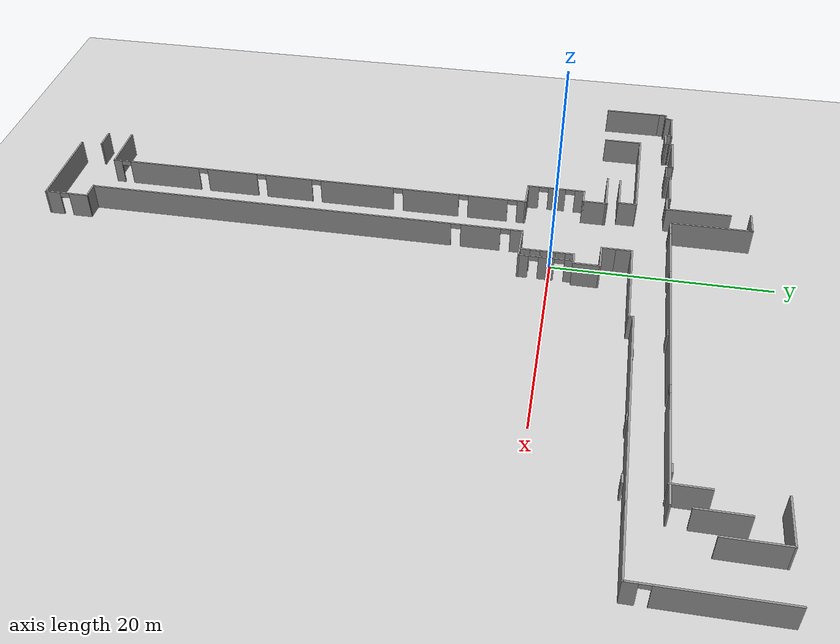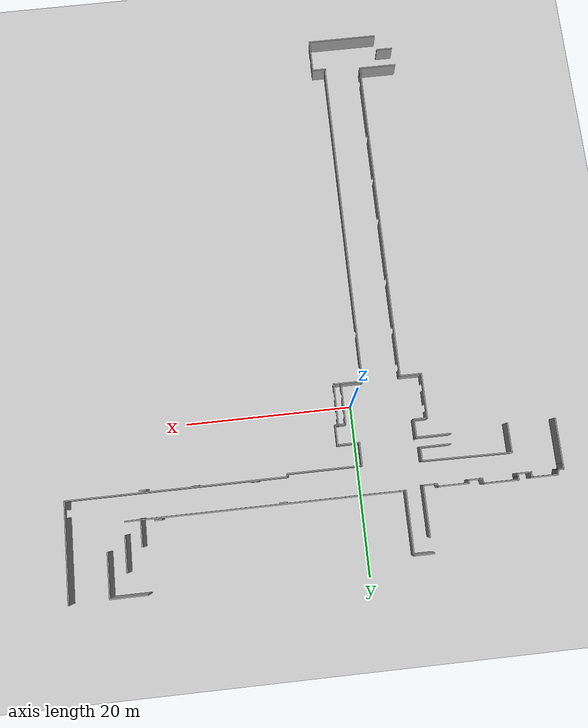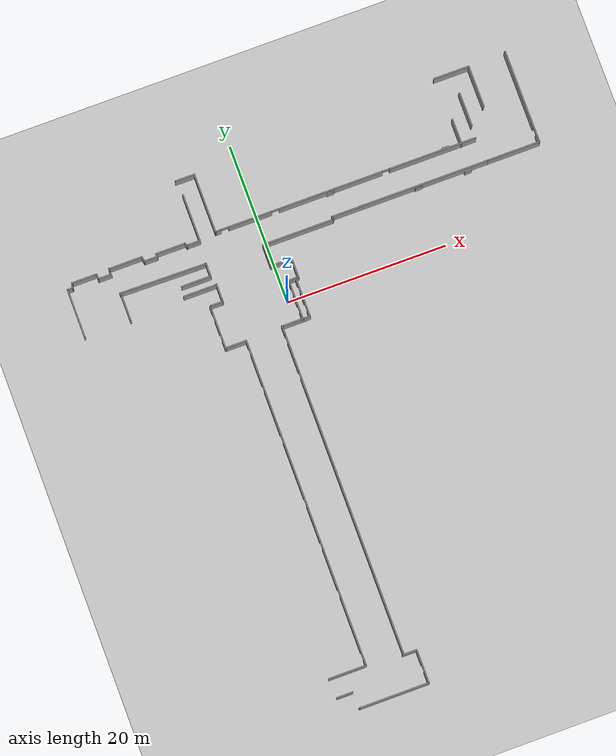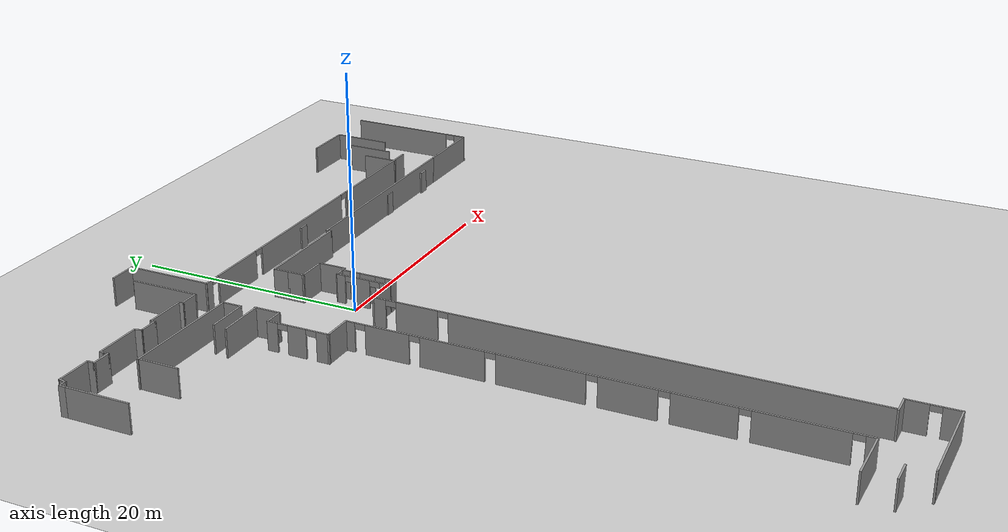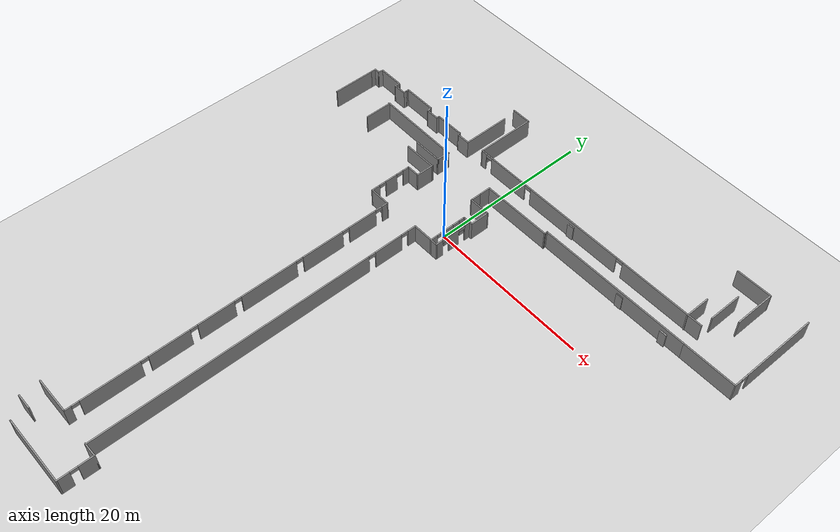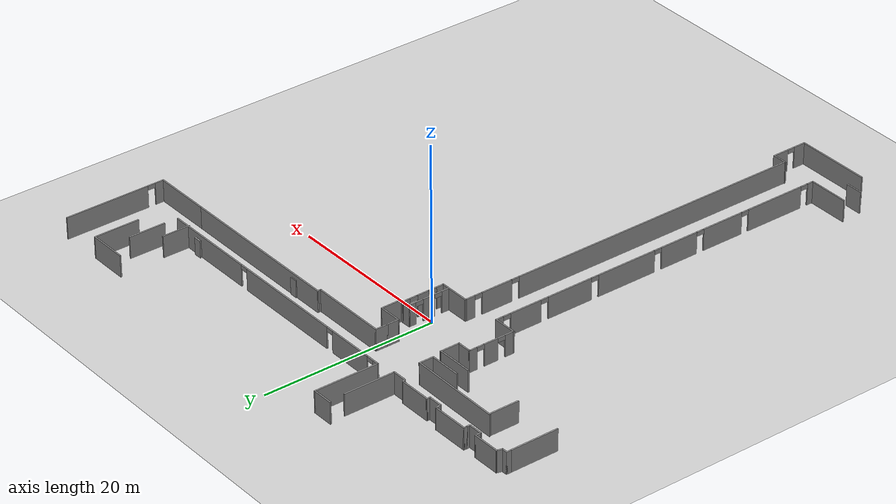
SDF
<sdf version="1.6">
 <world name="default">
  <model name="ground_plane">
   <static>1</static>
   <link name="link">
    <collision name="collision">
     <geometry><plane><normal>0 0 1</normal><size>100 100</size></plane></geometry>
     <surface><friction><ode><mu>100</mu><mu2>50</mu2></ode></friction></surface>
    </collision>
    <visual name="visual">
     <cast_shadows>0</cast_shadows>
     <geometry><plane><normal>0 0 1</normal><size>100 100</size></plane></geometry>
     <material>
      <script><uri>file://media/materials/scripts/gazebo.material</uri><name>Gazebo/Grey</name></script>
     </material>
    </visual>
   </link>
  </model>
  <model name="Untitled">
   <pose>5.24668 -14.5439 0 0 -0 0</pose>
   <link name="Door_21">
    <collision name="Door_21_Collision">
     <geometry><box><size>0.9 0.17 2</size></box></geometry>
     <pose>0 0 1 0 -0 0</pose>
    </collision>
    <visual name="Door_21_Visual">
     <pose>0 0 1 0 -0 0</pose>
     <geometry><box><size>0.9 0.17 2</size></box></geometry>
     <material>
      <script><uri>file://media/materials/scripts/gazebo.material</uri><name>Gazebo/Grey</name></script>
     </material>
    </visual>
    <pose>6.93392 22.1522 0 0 -0 0</pose>
   </link>
   <link name="Door_22">
    <collision name="Door_22_Collision">
     <geometry><box><size>0.9 0.17 2</size></box></geometry>
     <pose>0 0 1 0 -0 0</pose>
    </collision>
    <visual name="Door_22_Visual">
     <pose>0 0 1 0 -0 0</pose>
     <geometry><box><size>0.9 0.17 2</size></box></geometry>
     <material>
      <script><uri>file://media/materials/scripts/gazebo.material</uri><name>Gazebo/Grey</name></script>
     </material>
    </visual>
    <pose>14.0126 21.9752 0 0 -0 0</pose>
   </link>
   <link name="Door_23">
    <collision name="Door_23_Collision">
     <geometry><box><size>0.9 0.17 2</size></box></geometry>
     <pose>0 0 1 0 -0 0</pose>
    </collision>
    <visual name="Door_23_Visual">
     <pose>0 0 1 0 -0 0</pose>
     <geometry><box><size>0.9 0.17 2</size></box></geometry>
     <material>
      <script><uri>file://media/materials/scripts/gazebo.material</uri><name>Gazebo/Grey</name></script>
     </material>
    </visual>
    <pose>20.2065 21.7983 0 0 -0 0</pose>
   </link>
   <link name="Door_25">
    <collision name="Door_25_Collision">
     <geometry><box><size>0.9 0.17 2</size></box></geometry>
     <pose>0 0 1 0 -0 0</pose>
    </collision>
    <visual name="Door_25_Visual">
     <pose>0 0 1 0 -0 0</pose>
     <geometry><box><size>0.9 0.17 2</size></box></geometry>
     <material>
      <script><uri>file://media/materials/scripts/gazebo.material</uri><name>Gazebo/Grey</name></script>
     </material>
    </visual>
    <pose>3.92546 24.9837 0 0 -0 0</pose>
   </link>
   <link name="Door_27">
    <collision name="Door_27_Collision">
     <geometry><box><size>0.9 0.17 2</size></box></geometry>
     <pose>0 0 1 0 -0 0</pose>
    </collision>
    <visual name="Door_27_Visual">
     <pose>0 0 1 0 -0 0</pose>
     <geometry><box><size>0.9 0.17 2</size></box></geometry>
     <material>
      <script><uri>file://media/materials/scripts/gazebo.material</uri><name>Gazebo/Grey</name></script>
     </material>
    </visual>
    <pose>18.6138 25.3376 0 0 -0 0</pose>
   </link>
   <link name="Wall_10">
    <pose>-3.49868 14.2381 0 0 -0 1.5708</pose>
    <visual name="Wall_10_Visual_0">
     <pose>-2.03539 0 1.25 0 -0 0</pose>
     <geometry><box><size>0.929216 0.15 2.5</size></box></geometry>
     <material>
      <script><uri>file://media/materials/scripts/gazebo.material</uri><name>Gazebo/Grey</name></script>
      <ambient>1 1 1 1</ambient>
     </material>
    </visual>
    <collision name="Wall_10_Collision_0">
     <geometry><box><size>0.929216 0.15 2.5</size></box></geometry>
     <pose>-2.03539 0 1.25 0 -0 0</pose>
    </collision>
    <visual name="Wall_10_Visual_1">
     <pose>0.040984 0 1.25 0 -0 0</pose>
     <geometry><box><size>1.42354 0.15 2.5</size></box></geometry>
     <material>
      <script><uri>file://media/materials/scripts/gazebo.material</uri><name>Gazebo/Grey</name></script>
      <ambient>1 1 1 1</ambient>
     </material>
    </visual>
    <collision name="Wall_10_Collision_1">
     <geometry><box><size>1.42354 0.15 2.5</size></box></geometry>
     <pose>0.040984 0 1.25 0 -0 0</pose>
    </collision>
    <visual name="Wall_10_Visual_2">
     <pose>2.07638 0 1.25 0 -0 0</pose>
     <geometry><box><size>0.847248 0.15 2.5</size></box></geometry>
     <material>
      <script><uri>file://media/materials/scripts/gazebo.material</uri><name>Gazebo/Grey</name></script>
      <ambient>1 1 1 1</ambient>
     </material>
    </visual>
    <collision name="Wall_10_Collision_2">
     <geometry><box><size>0.847248 0.15 2.5</size></box></geometry>
     <pose>2.07638 0 1.25 0 -0 0</pose>
    </collision>
    <visual name="Wall_10_Visual_3">
     <pose>-1.12078 0 2.25 0 -0 0</pose>
     <geometry><box><size>0.9 0.15 0.5</size></box></geometry>
     <material>
      <script><uri>file://media/materials/scripts/gazebo.material</uri><name>Gazebo/Grey</name></script>
      <ambient>1 1 1 1</ambient>
     </material>
    </visual>
    <collision name="Wall_10_Collision_3">
     <geometry><box><size>0.9 0.15 0.5</size></box></geometry>
     <pose>-1.12078 0 2.25 0 -0 0</pose>
    </collision>
    <visual name="Wall_10_Visual_4">
     <pose>1.20275 0 2.25 0 -0 0</pose>
     <geometry><box><size>0.9 0.15 0.5</size></box></geometry>
     <material>
      <script><uri>file://media/materials/scripts/gazebo.material</uri><name>Gazebo/Grey</name></script>
      <ambient>1 1 1 1</ambient>
     </material>
    </visual>
    <collision name="Wall_10_Collision_4">
     <geometry><box><size>0.9 0.15 0.5</size></box></geometry>
     <pose>1.20275 0 2.25 0 -0 0</pose>
    </collision>
   </link>
   <link name="Wall_13">
    <collision name="Wall_13_Collision">
     <geometry><box><size>1.02654 0.15 2.5</size></box></geometry>
     <pose>0 0 1.25 0 -0 0</pose>
    </collision>
    <visual name="Wall_13_Visual">
     <pose>0 0 1.25 0 -0 0</pose>
     <geometry><box><size>1.02654 0.15 2.5</size></box></geometry>
     <material>
      <script><uri>file://media/materials/scripts/gazebo.material</uri><name>Gazebo/Grey</name></script>
      <ambient>1 1 1 1</ambient>
     </material>
    </visual>
    <pose>-3.93676 16.65 0 0 -0 0.02984</pose>
   </link>
   <link name="Wall_16">
    <collision name="Wall_16_Collision">
     <geometry><box><size>2.75 0.15 2.5</size></box></geometry>
     <pose>0 0 1.25 0 -0 0</pose>
    </collision>
    <visual name="Wall_16_Visual">
     <pose>0 0 1.25 0 -0 0</pose>
     <geometry><box><size>2.75 0.15 2.5</size></box></geometry>
     <material>
      <script><uri>file://media/materials/scripts/gazebo.material</uri><name>Gazebo/Grey</name></script>
      <ambient>1 1 1 1</ambient>
     </material>
    </visual>
    <pose>-5.67483 11.7869 0 0 -0 3.14159</pose>
   </link>
   <link name="Wall_18">
    <pose>-6.97484 -8.84982 0 0 0 -1.5708</pose>
    <visual name="Wall_18_Visual_0">
     <pose>-20.12 0 1.25 0 -0 0</pose>
     <geometry><box><size>1.18354 0.15 2.5</size></box></geometry>
     <material>
      <script><uri>file://media/materials/scripts/gazebo.material</uri><name>Gazebo/Grey</name></script>
      <ambient>1 1 1 1</ambient>
     </material>
    </visual>
    <collision name="Wall_18_Collision_0">
     <geometry><box><size>1.18354 0.15 2.5</size></box></geometry>
     <pose>-20.12 0 1.25 0 -0 0</pose>
    </collision>
    <visual name="Wall_18_Visual_1">
     <pose>-16.7893 0 1.25 0 -0 0</pose>
     <geometry><box><size>3.67779 0.15 2.5</size></box></geometry>
     <material>
      <script><uri>file://media/materials/scripts/gazebo.material</uri><name>Gazebo/Grey</name></script>
      <ambient>1 1 1 1</ambient>
     </material>
    </visual>
    <collision name="Wall_18_Collision_1">
     <geometry><box><size>3.67779 0.15 2.5</size></box></geometry>
     <pose>-16.7893 0 1.25 0 -0 0</pose>
    </collision>
    <visual name="Wall_18_Visual_2">
     <pose>3.33067 0 1.25 0 -0 0</pose>
     <geometry><box><size>34.7622 0.15 2.5</size></box></geometry>
     <material>
      <script><uri>file://media/materials/scripts/gazebo.material</uri><name>Gazebo/Grey</name></script>
      <ambient>1 1 1 1</ambient>
     </material>
    </visual>
    <collision name="Wall_18_Collision_2">
     <geometry><box><size>34.7622 0.15 2.5</size></box></geometry>
     <pose>3.33067 0 1.25 0 -0 0</pose>
    </collision>
    <visual name="Wall_18_Visual_3">
     <pose>-19.0782 0 2.25 0 -0 0</pose>
     <geometry><box><size>0.9 0.15 0.5</size></box></geometry>
     <material>
      <script><uri>file://media/materials/scripts/gazebo.material</uri><name>Gazebo/Grey</name></script>
      <ambient>1 1 1 1</ambient>
     </material>
    </visual>
    <collision name="Wall_18_Collision_3">
     <geometry><box><size>0.9 0.15 0.5</size></box></geometry>
     <pose>-19.0782 0 2.25 0 -0 0</pose>
    </collision>
    <visual name="Wall_18_Visual_4">
     <pose>-14.5004 0 2.25 0 -0 0</pose>
     <geometry><box><size>0.9 0.15 0.5</size></box></geometry>
     <material>
      <script><uri>file://media/materials/scripts/gazebo.material</uri><name>Gazebo/Grey</name></script>
      <ambient>1 1 1 1</ambient>
     </material>
    </visual>
    <collision name="Wall_18_Collision_4">
     <geometry><box><size>0.9 0.15 0.5</size></box></geometry>
     <pose>-14.5004 0 2.25 0 -0 0</pose>
    </collision>
   </link>
   <link name="Wall_19">
    <collision name="Wall_19_Collision">
     <geometry><box><size>1.82651 0.15 2.5</size></box></geometry>
     <pose>0 0 1.25 0 -0 0</pose>
    </collision>
    <visual name="Wall_19_Visual">
     <pose>0 0 1.25 0 -0 0</pose>
     <geometry><box><size>1.82651 0.15 2.5</size></box></geometry>
     <material>
      <script><uri>file://media/materials/scripts/gazebo.material</uri><name>Gazebo/Grey</name></script>
      <ambient>1 1 1 1</ambient>
     </material>
    </visual>
    <pose>-6.21309 -29.5631 0 0 -0 0</pose>
   </link>
   <link name="Wall_20">
    <pose>-5.37484 -31.6131 0 0 0 -1.5708</pose>
    <visual name="Wall_20_Visual_0">
     <pose>-1.19221 0 1.25 0 -0 0</pose>
     <geometry><box><size>1.86558 0.15 2.5</size></box></geometry>
     <material>
      <script><uri>file://media/materials/scripts/gazebo.material</uri><name>Gazebo/Grey</name></script>
      <ambient>1 1 1 1</ambient>
     </material>
    </visual>
    <collision name="Wall_20_Collision_0">
     <geometry><box><size>1.86558 0.15 2.5</size></box></geometry>
     <pose>-1.19221 0 1.25 0 -0 0</pose>
    </collision>
    <visual name="Wall_20_Visual_1">
     <pose>1.38279 0 1.25 0 -0 0</pose>
     <geometry><box><size>1.48442 0.15 2.5</size></box></geometry>
     <material>
      <script><uri>file://media/materials/scripts/gazebo.material</uri><name>Gazebo/Grey</name></script>
      <ambient>1 1 1 1</ambient>
     </material>
    </visual>
    <collision name="Wall_20_Collision_1">
     <geometry><box><size>1.48442 0.15 2.5</size></box></geometry>
     <pose>1.38279 0 1.25 0 -0 0</pose>
    </collision>
    <visual name="Wall_20_Visual_2">
     <pose>0.190582 0 2.25 0 -0 0</pose>
     <geometry><box><size>0.9 0.15 0.5</size></box></geometry>
     <material>
      <script><uri>file://media/materials/scripts/gazebo.material</uri><name>Gazebo/Grey</name></script>
      <ambient>1 1 1 1</ambient>
     </material>
    </visual>
    <collision name="Wall_20_Collision_2">
     <geometry><box><size>0.9 0.15 0.5</size></box></geometry>
     <pose>0.190582 0 2.25 0 -0 0</pose>
    </collision>
   </link>
   <link name="Wall_21">
    <collision name="Wall_21_Collision">
     <geometry><box><size>8.75 0.15 2.5</size></box></geometry>
     <pose>0 0 1.25 0 -0 0</pose>
    </collision>
    <visual name="Wall_21_Visual">
     <pose>0 0 1.25 0 -0 0</pose>
     <geometry><box><size>8.75 0.15 2.5</size></box></geometry>
     <material>
      <script><uri>file://media/materials/scripts/gazebo.material</uri><name>Gazebo/Grey</name></script>
      <ambient>1 1 1 1</ambient>
     </material>
    </visual>
    <pose>-9.67484 -33.6631 0 0 -0 3.14159</pose>
   </link>
   <link name="Wall_22">
    <collision name="Wall_22_Collision">
     <geometry><box><size>0.16 0.15 2.5</size></box></geometry>
     <pose>0 0 1.25 0 -0 0</pose>
    </collision>
    <visual name="Wall_22_Visual">
     <pose>0 0 1.25 0 -0 0</pose>
     <geometry><box><size>0.16 0.15 2.5</size></box></geometry>
     <material>
      <script><uri>file://media/materials/scripts/gazebo.material</uri><name>Gazebo/Grey</name></script>
      <ambient>1 1 1 1</ambient>
     </material>
    </visual>
    <pose>-13.9698 -33.6631 0 0 -0 0</pose>
   </link>
   <link name="Wall_24">
    <collision name="Wall_24_Collision">
     <geometry><box><size>0.5 0.15 2.5</size></box></geometry>
     <pose>0 0 1.25 0 -0 0</pose>
    </collision>
    <visual name="Wall_24_Visual">
     <pose>0 0 1.25 0 -0 0</pose>
     <geometry><box><size>0.5 0.15 2.5</size></box></geometry>
     <material>
      <script><uri>file://media/materials/scripts/gazebo.material</uri><name>Gazebo/Grey</name></script>
      <ambient>1 1 1 1</ambient>
     </material>
    </visual>
    <pose>-3.32368 16.6631 0 0 -0 0</pose>
   </link>
   <link name="Wall_25">
    <collision name="Wall_25_Collision">
     <geometry><box><size>2.5 0.15 2.5</size></box></geometry>
     <pose>0 0 1.25 0 -0 0</pose>
    </collision>
    <visual name="Wall_25_Visual">
     <pose>0 0 1.25 0 -0 0</pose>
     <geometry><box><size>2.5 0.15 2.5</size></box></geometry>
     <material>
      <script><uri>file://media/materials/scripts/gazebo.material</uri><name>Gazebo/Grey</name></script>
      <ambient>1 1 1 1</ambient>
     </material>
    </visual>
    <pose>-3.14868 17.8381 0 0 -0 1.5708</pose>
   </link>
   <link name="Wall_26">
    <collision name="Wall_26_Collision">
     <geometry><box><size>2.75 0.15 2.5</size></box></geometry>
     <pose>0 0 1.25 0 -0 0</pose>
    </collision>
    <visual name="Wall_26_Visual">
     <pose>0 0 1.25 0 -0 0</pose>
     <geometry><box><size>2.75 0.15 2.5</size></box></geometry>
     <material>
      <script><uri>file://media/materials/scripts/gazebo.material</uri><name>Gazebo/Grey</name></script>
      <ambient>1 1 1 1</ambient>
     </material>
    </visual>
    <pose>-4.44868 19.0131 0 0 -0 3.14159</pose>
   </link>
   <link name="Wall_27">
    <collision name="Wall_27_Collision">
     <geometry><box><size>1.5 0.15 2.5</size></box></geometry>
     <pose>0 0 1.25 0 -0 0</pose>
    </collision>
    <visual name="Wall_27_Visual">
     <pose>0 0 1.25 0 -0 0</pose>
     <geometry><box><size>1.5 0.15 2.5</size></box></geometry>
     <material>
      <script><uri>file://media/materials/scripts/gazebo.material</uri><name>Gazebo/Grey</name></script>
      <ambient>1 1 1 1</ambient>
     </material>
    </visual>
    <pose>-5.74868 19.6881 0 0 -0 1.5708</pose>
   </link>
   <link name="Wall_28">
    <collision name="Wall_28_Collision">
     <geometry><box><size>1.5 0.15 2.5</size></box></geometry>
     <pose>0 0 1.25 0 -0 0</pose>
    </collision>
    <visual name="Wall_28_Visual">
     <pose>0 0 1.25 0 -0 0</pose>
     <geometry><box><size>1.5 0.15 2.5</size></box></geometry>
     <material>
      <script><uri>file://media/materials/scripts/gazebo.material</uri><name>Gazebo/Grey</name></script>
      <ambient>1 1 1 1</ambient>
     </material>
    </visual>
    <pose>-5.74868 21.0381 0 0 -0 1.5708</pose>
   </link>
   <link name="Wall_29">
    <collision name="Wall_29_Collision">
     <geometry><box><size>9 0.15 2.5</size></box></geometry>
     <pose>0 0 1.25 0 -0 0</pose>
    </collision>
    <visual name="Wall_29_Visual">
     <pose>0 0 1.25 0 -0 0</pose>
     <geometry><box><size>9 0.15 2.5</size></box></geometry>
     <material>
      <script><uri>file://media/materials/scripts/gazebo.material</uri><name>Gazebo/Grey</name></script>
      <ambient>1 1 1 1</ambient>
     </material>
    </visual>
    <pose>-1.32368 21.7131 0 0 -0 0</pose>
   </link>
   <link name="Wall_30">
    <collision name="Wall_30_Collision">
     <geometry><box><size>0.5 0.15 2.5</size></box></geometry>
     <pose>0 0 1.25 0 -0 0</pose>
    </collision>
    <visual name="Wall_30_Visual">
     <pose>0 0 1.25 0 -0 0</pose>
     <geometry><box><size>0.5 0.15 2.5</size></box></geometry>
     <material>
      <script><uri>file://media/materials/scripts/gazebo.material</uri><name>Gazebo/Grey</name></script>
      <ambient>1 1 1 1</ambient>
     </material>
    </visual>
    <pose>3.10132 21.8881 0 0 -0 1.5708</pose>
   </link>
   <link name="Wall_31">
    <collision name="Wall_31_Collision">
     <geometry><box><size>19.75 0.15 2.5</size></box></geometry>
     <pose>0 0 1.25 0 -0 0</pose>
    </collision>
    <visual name="Wall_31_Visual">
     <pose>0 0 1.25 0 -0 0</pose>
     <geometry><box><size>19.75 0.15 2.5</size></box></geometry>
     <material>
      <script><uri>file://media/materials/scripts/gazebo.material</uri><name>Gazebo/Grey</name></script>
      <ambient>1 1 1 1</ambient>
     </material>
    </visual>
    <pose>12.9013 22.0631 0 0 -0 0</pose>
   </link>
   <link name="Wall_33">
    <pose>-11.5526 -8.79923 0 0 -0 1.5708</pose>
    <visual name="Wall_33_Visual_0">
     <pose>-20.0811 0 1.25 0 -0 0</pose>
     <geometry><box><size>0.837718 0.15 2.5</size></box></geometry>
     <material>
      <script><uri>file://media/materials/scripts/gazebo.material</uri><name>Gazebo/Grey</name></script>
      <ambient>1 1 1 1</ambient>
     </material>
    </visual>
    <collision name="Wall_33_Collision_0">
     <geometry><box><size>0.837718 0.15 2.5</size></box></geometry>
     <pose>-20.0811 0 1.25 0 -0 0</pose>
    </collision>
    <visual name="Wall_33_Visual_1">
     <pose>-15.2438 0 1.25 0 -0 0</pose>
     <geometry><box><size>7.03702 0.15 2.5</size></box></geometry>
     <material>
      <script><uri>file://media/materials/scripts/gazebo.material</uri><name>Gazebo/Grey</name></script>
      <ambient>1 1 1 1</ambient>
     </material>
    </visual>
    <collision name="Wall_33_Collision_1">
     <geometry><box><size>7.03702 0.15 2.5</size></box></geometry>
     <pose>-15.2438 0 1.25 0 -0 0</pose>
    </collision>
    <visual name="Wall_33_Visual_2">
     <pose>-8.32432 0 1.25 0 -0 0</pose>
     <geometry><box><size>5.00188 0.15 2.5</size></box></geometry>
     <material>
      <script><uri>file://media/materials/scripts/gazebo.material</uri><name>Gazebo/Grey</name></script>
      <ambient>1 1 1 1</ambient>
     </material>
    </visual>
    <collision name="Wall_33_Collision_2">
     <geometry><box><size>5.00188 0.15 2.5</size></box></geometry>
     <pose>-8.32432 0 1.25 0 -0 0</pose>
    </collision>
    <visual name="Wall_33_Visual_3">
     <pose>-2.62595 0 1.25 0 -0 0</pose>
     <geometry><box><size>4.59486 0.15 2.5</size></box></geometry>
     <material>
      <script><uri>file://media/materials/scripts/gazebo.material</uri><name>Gazebo/Grey</name></script>
      <ambient>1 1 1 1</ambient>
     </material>
    </visual>
    <collision name="Wall_33_Collision_3">
     <geometry><box><size>4.59486 0.15 2.5</size></box></geometry>
     <pose>-2.62595 0 1.25 0 -0 0</pose>
    </collision>
    <visual name="Wall_33_Visual_4">
     <pose>4.15299 0 1.25 0 -0 0</pose>
     <geometry><box><size>7.16302 0.15 2.5</size></box></geometry>
     <material>
      <script><uri>file://media/materials/scripts/gazebo.material</uri><name>Gazebo/Grey</name></script>
      <ambient>1 1 1 1</ambient>
     </material>
    </visual>
    <collision name="Wall_33_Collision_4">
     <geometry><box><size>7.16302 0.15 2.5</size></box></geometry>
     <pose>4.15299 0 1.25 0 -0 0</pose>
    </collision>
    <visual name="Wall_33_Visual_5">
     <pose>11.3423 0 1.25 0 -0 0</pose>
     <geometry><box><size>5.41564 0.15 2.5</size></box></geometry>
     <material>
      <script><uri>file://media/materials/scripts/gazebo.material</uri><name>Gazebo/Grey</name></script>
      <ambient>1 1 1 1</ambient>
     </material>
    </visual>
    <collision name="Wall_33_Collision_5">
     <geometry><box><size>5.41564 0.15 2.5</size></box></geometry>
     <pose>11.3423 0 1.25 0 -0 0</pose>
    </collision>
    <visual name="Wall_33_Visual_6">
     <pose>16.8387 0 1.25 0 -0 0</pose>
     <geometry><box><size>3.77715 0.15 2.5</size></box></geometry>
     <material>
      <script><uri>file://media/materials/scripts/gazebo.material</uri><name>Gazebo/Grey</name></script>
      <ambient>1 1 1 1</ambient>
     </material>
    </visual>
    <collision name="Wall_33_Collision_6">
     <geometry><box><size>3.77715 0.15 2.5</size></box></geometry>
     <pose>16.8387 0 1.25 0 -0 0</pose>
    </collision>
    <visual name="Wall_33_Visual_7">
     <pose>20.0636 0 1.25 0 -0 0</pose>
     <geometry><box><size>0.872717 0.15 2.5</size></box></geometry>
     <material>
      <script><uri>file://media/materials/scripts/gazebo.material</uri><name>Gazebo/Grey</name></script>
      <ambient>1 1 1 1</ambient>
     </material>
    </visual>
    <collision name="Wall_33_Collision_7">
     <geometry><box><size>0.872717 0.15 2.5</size></box></geometry>
     <pose>20.0636 0 1.25 0 -0 0</pose>
    </collision>
    <visual name="Wall_33_Visual_8">
     <pose>-19.2123 0 2.25 0 -0 0</pose>
     <geometry><box><size>0.9 0.15 0.5</size></box></geometry>
     <material>
      <script><uri>file://media/materials/scripts/gazebo.material</uri><name>Gazebo/Grey</name></script>
      <ambient>1 1 1 1</ambient>
     </material>
    </visual>
    <collision name="Wall_33_Collision_8">
     <geometry><box><size>0.9 0.15 0.5</size></box></geometry>
     <pose>-19.2123 0 2.25 0 -0 0</pose>
    </collision>
    <visual name="Wall_33_Visual_9">
     <pose>-11.2753 0 2.25 0 -0 0</pose>
     <geometry><box><size>0.9 0.15 0.5</size></box></geometry>
     <material>
      <script><uri>file://media/materials/scripts/gazebo.material</uri><name>Gazebo/Grey</name></script>
      <ambient>1 1 1 1</ambient>
     </material>
    </visual>
    <collision name="Wall_33_Collision_9">
     <geometry><box><size>0.9 0.15 0.5</size></box></geometry>
     <pose>-11.2753 0 2.25 0 -0 0</pose>
    </collision>
    <visual name="Wall_33_Visual_10">
     <pose>-5.37338 0 2.25 0 -0 0</pose>
     <geometry><box><size>0.9 0.15 0.5</size></box></geometry>
     <material>
      <script><uri>file://media/materials/scripts/gazebo.material</uri><name>Gazebo/Grey</name></script>
      <ambient>1 1 1 1</ambient>
     </material>
    </visual>
    <collision name="Wall_33_Collision_10">
     <geometry><box><size>0.9 0.15 0.5</size></box></geometry>
     <pose>-5.37338 0 2.25 0 -0 0</pose>
    </collision>
    <visual name="Wall_33_Visual_11">
     <pose>0.121477 0 2.25 0 -0 0</pose>
     <geometry><box><size>0.9 0.15 0.5</size></box></geometry>
     <material>
      <script><uri>file://media/materials/scripts/gazebo.material</uri><name>Gazebo/Grey</name></script>
      <ambient>1 1 1 1</ambient>
     </material>
    </visual>
    <collision name="Wall_33_Collision_11">
     <geometry><box><size>0.9 0.15 0.5</size></box></geometry>
     <pose>0.121477 0 2.25 0 -0 0</pose>
    </collision>
    <visual name="Wall_33_Visual_12">
     <pose>8.18449 0 2.25 0 -0 0</pose>
     <geometry><box><size>0.9 0.15 0.5</size></box></geometry>
     <material>
      <script><uri>file://media/materials/scripts/gazebo.material</uri><name>Gazebo/Grey</name></script>
      <ambient>1 1 1 1</ambient>
     </material>
    </visual>
    <collision name="Wall_33_Collision_12">
     <geometry><box><size>0.9 0.15 0.5</size></box></geometry>
     <pose>8.18449 0 2.25 0 -0 0</pose>
    </collision>
    <visual name="Wall_33_Visual_13">
     <pose>14.5001 0 2.25 0 -0 0</pose>
     <geometry><box><size>0.9 0.15 0.5</size></box></geometry>
     <material>
      <script><uri>file://media/materials/scripts/gazebo.material</uri><name>Gazebo/Grey</name></script>
      <ambient>1 1 1 1</ambient>
     </material>
    </visual>
    <collision name="Wall_33_Collision_13">
     <geometry><box><size>0.9 0.15 0.5</size></box></geometry>
     <pose>14.5001 0 2.25 0 -0 0</pose>
    </collision>
    <visual name="Wall_33_Visual_14">
     <pose>19.1773 0 2.25 0 -0 0</pose>
     <geometry><box><size>0.9 0.15 0.5</size></box></geometry>
     <material>
      <script><uri>file://media/materials/scripts/gazebo.material</uri><name>Gazebo/Grey</name></script>
      <ambient>1 1 1 1</ambient>
     </material>
    </visual>
    <collision name="Wall_33_Collision_14">
     <geometry><box><size>0.9 0.15 0.5</size></box></geometry>
     <pose>19.1773 0 2.25 0 -0 0</pose>
    </collision>
   </link>
   <link name="Wall_34">
    <collision name="Wall_34_Collision">
     <geometry><box><size>2.75 0.15 2.5</size></box></geometry>
     <pose>0 0 1.25 0 -0 0</pose>
    </collision>
    <visual name="Wall_34_Visual">
     <pose>0 0 1.25 0 -0 0</pose>
     <geometry><box><size>2.75 0.15 2.5</size></box></geometry>
     <material>
      <script><uri>file://media/materials/scripts/gazebo.material</uri><name>Gazebo/Grey</name></script>
      <ambient>1 1 1 1</ambient>
     </material>
    </visual>
    <pose>-12.8526 11.6258 0 0 -0 3.14159</pose>
   </link>
   <link name="Wall_35">
    <pose>-14.1526 14.3008 0 0 -0 1.5708</pose>
    <visual name="Wall_35_Visual_0">
     <pose>-2.18556 0 1.25 0 -0 0</pose>
     <geometry><box><size>1.12888 0.15 2.5</size></box></geometry>
     <material>
      <script><uri>file://media/materials/scripts/gazebo.material</uri><name>Gazebo/Grey</name></script>
      <ambient>1 1 1 1</ambient>
     </material>
    </visual>
    <collision name="Wall_35_Collision_0">
     <geometry><box><size>1.12888 0.15 2.5</size></box></geometry>
     <pose>-2.18556 0 1.25 0 -0 0</pose>
    </collision>
    <visual name="Wall_35_Visual_1">
     <pose>0.09366 0 1.25 0 -0 0</pose>
     <geometry><box><size>1.62955 0.15 2.5</size></box></geometry>
     <material>
      <script><uri>file://media/materials/scripts/gazebo.material</uri><name>Gazebo/Grey</name></script>
      <ambient>1 1 1 1</ambient>
     </material>
    </visual>
    <collision name="Wall_35_Collision_1">
     <geometry><box><size>1.62955 0.15 2.5</size></box></geometry>
     <pose>0.09366 0 1.25 0 -0 0</pose>
    </collision>
    <visual name="Wall_35_Visual_2">
     <pose>2.27922 0 1.25 0 -0 0</pose>
     <geometry><box><size>0.941564 0.15 2.5</size></box></geometry>
     <material>
      <script><uri>file://media/materials/scripts/gazebo.material</uri><name>Gazebo/Grey</name></script>
      <ambient>1 1 1 1</ambient>
     </material>
    </visual>
    <collision name="Wall_35_Collision_2">
     <geometry><box><size>0.941564 0.15 2.5</size></box></geometry>
     <pose>2.27922 0 1.25 0 -0 0</pose>
    </collision>
    <visual name="Wall_35_Visual_3">
     <pose>-1.17112 0 2.25 0 -0 0</pose>
     <geometry><box><size>0.9 0.15 0.5</size></box></geometry>
     <material>
      <script><uri>file://media/materials/scripts/gazebo.material</uri><name>Gazebo/Grey</name></script>
      <ambient>1 1 1 1</ambient>
     </material>
    </visual>
    <collision name="Wall_35_Collision_3">
     <geometry><box><size>0.9 0.15 0.5</size></box></geometry>
     <pose>-1.17112 0 2.25 0 -0 0</pose>
    </collision>
    <visual name="Wall_35_Visual_4">
     <pose>1.35844 0 2.25 0 -0 0</pose>
     <geometry><box><size>0.9 0.15 0.5</size></box></geometry>
     <material>
      <script><uri>file://media/materials/scripts/gazebo.material</uri><name>Gazebo/Grey</name></script>
      <ambient>1 1 1 1</ambient>
     </material>
    </visual>
    <collision name="Wall_35_Collision_4">
     <geometry><box><size>0.9 0.15 0.5</size></box></geometry>
     <pose>1.35844 0 2.25 0 -0 0</pose>
    </collision>
   </link>
   <link name="Wall_36">
    <collision name="Wall_36_Collision">
     <geometry><box><size>1.75 0.15 2.5</size></box></geometry>
     <pose>0 0 1.25 0 -0 0</pose>
    </collision>
    <visual name="Wall_36_Visual">
     <pose>0 0 1.25 0 -0 0</pose>
     <geometry><box><size>1.75 0.15 2.5</size></box></geometry>
     <material>
      <script><uri>file://media/materials/scripts/gazebo.material</uri><name>Gazebo/Grey</name></script>
      <ambient>1 1 1 1</ambient>
     </material>
    </visual>
    <pose>-13.3526 16.9758 0 0 -0 0</pose>
   </link>
   <link name="Wall_37">
    <collision name="Wall_37_Collision">
     <geometry><box><size>2.36206 0.15 2.5</size></box></geometry>
     <pose>0 0 1.25 0 -0 0</pose>
    </collision>
    <visual name="Wall_37_Visual">
     <pose>0 0 1.25 0 -0 0</pose>
     <geometry><box><size>2.36206 0.15 2.5</size></box></geometry>
     <material>
      <script><uri>file://media/materials/scripts/gazebo.material</uri><name>Gazebo/Grey</name></script>
      <ambient>1 1 1 1</ambient>
     </material>
    </visual>
    <pose>-12.5526 18.0818 0 0 -0 1.5708</pose>
   </link>
   <link name="Wall_38">
    <collision name="Wall_38_Collision">
     <geometry><box><size>4.25 0.15 2.5</size></box></geometry>
     <pose>0 0 1.25 0 -0 0</pose>
    </collision>
    <visual name="Wall_38_Visual">
     <pose>0 0 1.25 0 -0 0</pose>
     <geometry><box><size>4.25 0.15 2.5</size></box></geometry>
     <material>
      <script><uri>file://media/materials/scripts/gazebo.material</uri><name>Gazebo/Grey</name></script>
      <ambient>1 1 1 1</ambient>
     </material>
    </visual>
    <pose>-14.6026 19.1113 0 0 -0 3.14159</pose>
   </link>
   <link name="Wall_40">
    <collision name="Wall_40_Collision">
     <geometry><box><size>3.75 0.15 2.5</size></box></geometry>
     <pose>0 0 1.25 0 -0 0</pose>
    </collision>
    <visual name="Wall_40_Visual">
     <pose>0 0 1.25 0 -0 0</pose>
     <geometry><box><size>3.75 0.15 2.5</size></box></geometry>
     <material>
      <script><uri>file://media/materials/scripts/gazebo.material</uri><name>Gazebo/Grey</name></script>
      <ambient>1 1 1 1</ambient>
     </material>
    </visual>
    <pose>-14.6677 20.3132 0 0 -0 0</pose>
   </link>
   <link name="Wall_41">
    <collision name="Wall_41_Collision">
     <geometry><box><size>1.75 0.15 2.5</size></box></geometry>
     <pose>0 0 1.25 0 -0 0</pose>
    </collision>
    <visual name="Wall_41_Visual">
     <pose>0 0 1.25 0 -0 0</pose>
     <geometry><box><size>1.75 0.15 2.5</size></box></geometry>
     <material>
      <script><uri>file://media/materials/scripts/gazebo.material</uri><name>Gazebo/Grey</name></script>
      <ambient>1 1 1 1</ambient>
     </material>
    </visual>
    <pose>-12.8677 21.1132 0 0 -0 1.5708</pose>
   </link>
   <link name="Wall_42">
    <collision name="Wall_42_Collision">
     <geometry><box><size>10.9041 0.15 2.5</size></box></geometry>
     <pose>0 0 1.25 0 -0 0</pose>
    </collision>
    <visual name="Wall_42_Visual">
     <pose>0 0 1.25 0 -0 0</pose>
     <geometry><box><size>10.9041 0.15 2.5</size></box></geometry>
     <material>
      <script><uri>file://media/materials/scripts/gazebo.material</uri><name>Gazebo/Grey</name></script>
      <ambient>1 1 1 1</ambient>
     </material>
    </visual>
    <pose>-18.2442 21.9897 0 0 -0 3.12736</pose>
   </link>
   <link name="Wall_43">
    <collision name="Wall_43_Collision">
     <geometry><box><size>3.5 0.15 2.5</size></box></geometry>
     <pose>0 0 1.25 0 -0 0</pose>
    </collision>
    <visual name="Wall_43_Visual">
     <pose>0 0 1.25 0 -0 0</pose>
     <geometry><box><size>3.5 0.15 2.5</size></box></geometry>
     <material>
      <script><uri>file://media/materials/scripts/gazebo.material</uri><name>Gazebo/Grey</name></script>
      <ambient>1 1 1 1</ambient>
     </material>
    </visual>
    <pose>-23.5442 20.3147 0 0 0 -1.5708</pose>
   </link>
   <link name="Wall_45">
    <collision name="Wall_45_Collision">
     <geometry><box><size>5.5 0.15 2.5</size></box></geometry>
     <pose>0 0 1.25 0 -0 0</pose>
    </collision>
    <visual name="Wall_45_Visual">
     <pose>0 0 1.25 0 -0 0</pose>
     <geometry><box><size>5.5 0.15 2.5</size></box></geometry>
     <material>
      <script><uri>file://media/materials/scripts/gazebo.material</uri><name>Gazebo/Grey</name></script>
      <ambient>1 1 1 1</ambient>
     </material>
    </visual>
    <pose>-29.3013 21.3237 0 0 -0 1.5708</pose>
   </link>
   <link name="Wall_46">
    <collision name="Wall_46_Collision">
     <geometry><box><size>0.75 0.15 2.5</size></box></geometry>
     <pose>0 0 1.25 0 -0 0</pose>
    </collision>
    <visual name="Wall_46_Visual">
     <pose>0 0 1.25 0 -0 0</pose>
     <geometry><box><size>0.75 0.15 2.5</size></box></geometry>
     <material>
      <script><uri>file://media/materials/scripts/gazebo.material</uri><name>Gazebo/Grey</name></script>
      <ambient>1 1 1 1</ambient>
     </material>
    </visual>
    <pose>-29.3013 24.2987 0 0 -0 1.5708</pose>
   </link>
   <link name="Wall_47">
    <collision name="Wall_47_Collision">
     <geometry><box><size>0.75 0.15 2.5</size></box></geometry>
     <pose>0 0 1.25 0 -0 0</pose>
    </collision>
    <visual name="Wall_47_Visual">
     <pose>0 0 1.25 0 -0 0</pose>
     <geometry><box><size>0.75 0.15 2.5</size></box></geometry>
     <material>
      <script><uri>file://media/materials/scripts/gazebo.material</uri><name>Gazebo/Grey</name></script>
      <ambient>1 1 1 1</ambient>
     </material>
    </visual>
    <pose>-29.0013 24.5987 0 0 -0 0</pose>
   </link>
   <link name="Wall_48">
    <collision name="Wall_48_Collision">
     <geometry><box><size>0.75 0.15 2.5</size></box></geometry>
     <pose>0 0 1.25 0 -0 0</pose>
    </collision>
    <visual name="Wall_48_Visual">
     <pose>0 0 1.25 0 -0 0</pose>
     <geometry><box><size>0.75 0.15 2.5</size></box></geometry>
     <material>
      <script><uri>file://media/materials/scripts/gazebo.material</uri><name>Gazebo/Grey</name></script>
      <ambient>1 1 1 1</ambient>
     </material>
    </visual>
    <pose>-28.6237 24.8885 0 0 -0 1.309</pose>
   </link>
   <link name="Wall_49">
    <collision name="Wall_49_Collision">
     <geometry><box><size>3.25 0.15 2.5</size></box></geometry>
     <pose>0 0 1.25 0 -0 0</pose>
    </collision>
    <visual name="Wall_49_Visual">
     <pose>0 0 1.25 0 -0 0</pose>
     <geometry><box><size>3.25 0.15 2.5</size></box></geometry>
     <material>
      <script><uri>file://media/materials/scripts/gazebo.material</uri><name>Gazebo/Grey</name></script>
      <ambient>1 1 1 1</ambient>
     </material>
    </visual>
    <pose>-26.996 25.1783 0 0 -0 0</pose>
   </link>
   <link name="Wall_50">
    <collision name="Wall_50_Collision">
     <geometry><box><size>0.75 0.15 2.5</size></box></geometry>
     <pose>0 0 1.25 0 -0 0</pose>
    </collision>
    <visual name="Wall_50_Visual">
     <pose>0 0 1.25 0 -0 0</pose>
     <geometry><box><size>0.75 0.15 2.5</size></box></geometry>
     <material>
      <script><uri>file://media/materials/scripts/gazebo.material</uri><name>Gazebo/Grey</name></script>
      <ambient>1 1 1 1</ambient>
     </material>
    </visual>
    <pose>-25.446 24.8783 0 0 0 -1.5708</pose>
   </link>
   <link name="Wall_51">
    <collision name="Wall_51_Collision">
     <geometry><box><size>1.75 0.15 2.5</size></box></geometry>
     <pose>0 0 1.25 0 -0 0</pose>
    </collision>
    <visual name="Wall_51_Visual">
     <pose>0 0 1.25 0 -0 0</pose>
     <geometry><box><size>1.75 0.15 2.5</size></box></geometry>
     <material>
      <script><uri>file://media/materials/scripts/gazebo.material</uri><name>Gazebo/Grey</name></script>
      <ambient>1 1 1 1</ambient>
     </material>
    </visual>
    <pose>-24.646 24.5783 0 0 -0 0</pose>
   </link>
   <link name="Wall_52">
    <collision name="Wall_52_Collision">
     <geometry><box><size>0.5 0.15 2.5</size></box></geometry>
     <pose>0 0 1.25 0 -0 0</pose>
    </collision>
    <visual name="Wall_52_Visual">
     <pose>0 0 1.25 0 -0 0</pose>
     <geometry><box><size>0.5 0.15 2.5</size></box></geometry>
     <material>
      <script><uri>file://media/materials/scripts/gazebo.material</uri><name>Gazebo/Grey</name></script>
      <ambient>1 1 1 1</ambient>
     </material>
    </visual>
    <pose>-23.846 24.7533 0 0 -0 1.5708</pose>
   </link>
   <link name="Wall_53">
    <collision name="Wall_53_Collision">
     <geometry><box><size>0.15 0.15 2.5</size></box></geometry>
     <pose>0 0 1.25 0 -0 0</pose>
    </collision>
    <visual name="Wall_53_Visual">
     <pose>0 0 1.25 0 -0 0</pose>
     <geometry><box><size>0.15 0.15 2.5</size></box></geometry>
     <material>
      <script><uri>file://media/materials/scripts/gazebo.material</uri><name>Gazebo/Grey</name></script>
      <ambient>1 1 1 1</ambient>
     </material>
    </visual>
    <pose>-23.846 24.9283 0 0 -0 0</pose>
   </link>
   <link name="Wall_54">
    <collision name="Wall_54_Collision">
     <geometry><box><size>0.5 0.15 2.5</size></box></geometry>
     <pose>0 0 1.25 0 -0 0</pose>
    </collision>
    <visual name="Wall_54_Visual">
     <pose>0 0 1.25 0 -0 0</pose>
     <geometry><box><size>0.5 0.15 2.5</size></box></geometry>
     <material>
      <script><uri>file://media/materials/scripts/gazebo.material</uri><name>Gazebo/Grey</name></script>
      <ambient>1 1 1 1</ambient>
     </material>
    </visual>
    <pose>-23.846 25.1033 0 0 -0 1.5708</pose>
   </link>
   <link name="Wall_55">
    <collision name="Wall_55_Collision">
     <geometry><box><size>4.25 0.15 2.5</size></box></geometry>
     <pose>0 0 1.25 0 -0 0</pose>
    </collision>
    <visual name="Wall_55_Visual">
     <pose>0 0 1.25 0 -0 0</pose>
     <geometry><box><size>4.25 0.15 2.5</size></box></geometry>
     <material>
      <script><uri>file://media/materials/scripts/gazebo.material</uri><name>Gazebo/Grey</name></script>
      <ambient>1 1 1 1</ambient>
     </material>
    </visual>
    <pose>-21.796 25.2783 0 0 -0 0</pose>
   </link>
   <link name="Wall_56">
    <collision name="Wall_56_Collision">
     <geometry><box><size>0.75 0.15 2.5</size></box></geometry>
     <pose>0 0 1.25 0 -0 0</pose>
    </collision>
    <visual name="Wall_56_Visual">
     <pose>0 0 1.25 0 -0 0</pose>
     <geometry><box><size>0.75 0.15 2.5</size></box></geometry>
     <material>
      <script><uri>file://media/materials/scripts/gazebo.material</uri><name>Gazebo/Grey</name></script>
      <ambient>1 1 1 1</ambient>
     </material>
    </visual>
    <pose>-19.6684 24.9885 0 0 0 -1.309</pose>
   </link>
   <link name="Wall_57">
    <collision name="Wall_57_Collision">
     <geometry><box><size>1.75 0.15 2.5</size></box></geometry>
     <pose>0 0 1.25 0 -0 0</pose>
    </collision>
    <visual name="Wall_57_Visual">
     <pose>0 0 1.25 0 -0 0</pose>
     <geometry><box><size>1.75 0.15 2.5</size></box></geometry>
     <material>
      <script><uri>file://media/materials/scripts/gazebo.material</uri><name>Gazebo/Grey</name></script>
      <ambient>1 1 1 1</ambient>
     </material>
    </visual>
    <pose>-18.7907 24.6987 0 0 -0 0</pose>
   </link>
   <link name="Wall_58">
    <collision name="Wall_58_Collision">
     <geometry><box><size>0.5 0.15 2.5</size></box></geometry>
     <pose>0 0 1.25 0 -0 0</pose>
    </collision>
    <visual name="Wall_58_Visual">
     <pose>0 0 1.25 0 -0 0</pose>
     <geometry><box><size>0.5 0.15 2.5</size></box></geometry>
     <material>
      <script><uri>file://media/materials/scripts/gazebo.material</uri><name>Gazebo/Grey</name></script>
      <ambient>1 1 1 1</ambient>
     </material>
    </visual>
    <pose>-17.9907 24.8737 0 0 -0 1.5708</pose>
   </link>
   <link name="Wall_59">
    <collision name="Wall_59_Collision">
     <geometry><box><size>3.75 0.15 2.5</size></box></geometry>
     <pose>0 0 1.25 0 -0 0</pose>
    </collision>
    <visual name="Wall_59_Visual">
     <pose>0 0 1.25 0 -0 0</pose>
     <geometry><box><size>3.75 0.15 2.5</size></box></geometry>
     <material>
      <script><uri>file://media/materials/scripts/gazebo.material</uri><name>Gazebo/Grey</name></script>
      <ambient>1 1 1 1</ambient>
     </material>
    </visual>
    <pose>-16.1907 25.0487 0 0 -0 0</pose>
   </link>
   <link name="Wall_60">
    <collision name="Wall_60_Collision">
     <geometry><box><size>0.5 0.15 2.5</size></box></geometry>
     <pose>0 0 1.25 0 -0 0</pose>
    </collision>
    <visual name="Wall_60_Visual">
     <pose>0 0 1.25 0 -0 0</pose>
     <geometry><box><size>0.5 0.15 2.5</size></box></geometry>
     <material>
      <script><uri>file://media/materials/scripts/gazebo.material</uri><name>Gazebo/Grey</name></script>
      <ambient>1 1 1 1</ambient>
     </material>
    </visual>
    <pose>-14.3032 24.8972 0 0 0 -1.0472</pose>
   </link>
   <link name="Wall_61">
    <collision name="Wall_61_Collision">
     <geometry><box><size>1.75 0.15 2.5</size></box></geometry>
     <pose>0 0 1.25 0 -0 0</pose>
    </collision>
    <visual name="Wall_61_Visual">
     <pose>0 0 1.25 0 -0 0</pose>
     <geometry><box><size>1.75 0.15 2.5</size></box></geometry>
     <material>
      <script><uri>file://media/materials/scripts/gazebo.material</uri><name>Gazebo/Grey</name></script>
      <ambient>1 1 1 1</ambient>
     </material>
    </visual>
    <pose>-13.4157 24.7456 0 0 -0 0</pose>
   </link>
   <link name="Wall_62">
    <collision name="Wall_62_Collision">
     <geometry><box><size>6 0.15 2.5</size></box></geometry>
     <pose>0 0 1.25 0 -0 0</pose>
    </collision>
    <visual name="Wall_62_Visual">
     <pose>0 0 1.25 0 -0 0</pose>
     <geometry><box><size>6 0.15 2.5</size></box></geometry>
     <material>
      <script><uri>file://media/materials/scripts/gazebo.material</uri><name>Gazebo/Grey</name></script>
      <ambient>1 1 1 1</ambient>
     </material>
    </visual>
    <pose>-12.6157 27.6706 0 0 -0 1.5708</pose>
   </link>
   <link name="Wall_64">
    <collision name="Wall_64_Collision">
     <geometry><box><size>2.5 0.15 2.5</size></box></geometry>
     <pose>0 0 1.25 0 -0 0</pose>
    </collision>
    <visual name="Wall_64_Visual">
     <pose>0 0 1.25 0 -0 0</pose>
     <geometry><box><size>2.5 0.15 2.5</size></box></geometry>
     <material>
      <script><uri>file://media/materials/scripts/gazebo.material</uri><name>Gazebo/Grey</name></script>
      <ambient>1 1 1 1</ambient>
     </material>
    </visual>
    <pose>-11.6917 32.4631 0 0 -0 0</pose>
   </link>
   <link name="Wall_65">
    <collision name="Wall_65_Collision">
     <geometry><box><size>7.5 0.15 2.5</size></box></geometry>
     <pose>0 0 1.25 0 -0 0</pose>
    </collision>
    <visual name="Wall_65_Visual">
     <pose>0 0 1.25 0 -0 0</pose>
     <geometry><box><size>7.5 0.15 2.5</size></box></geometry>
     <material>
      <script><uri>file://media/materials/scripts/gazebo.material</uri><name>Gazebo/Grey</name></script>
      <ambient>1 1 1 1</ambient>
     </material>
    </visual>
    <pose>-10.5167 28.7881 0 0 0 -1.5708</pose>
   </link>
   <link name="Wall_66">
    <pose>5.90826 25.1131 0 0 -0 0</pose>
    <visual name="Wall_66_Visual_0">
     <pose>-16.1027 0 1.25 0 -0 0</pose>
     <geometry><box><size>0.794599 0.15 2.5</size></box></geometry>
     <material>
      <script><uri>file://media/materials/scripts/gazebo.material</uri><name>Gazebo/Grey</name></script>
      <ambient>1 1 1 1</ambient>
     </material>
    </visual>
    <collision name="Wall_66_Collision_0">
     <geometry><box><size>0.794599 0.15 2.5</size></box></geometry>
     <pose>-16.1027 0 1.25 0 -0 0</pose>
    </collision>
    <visual name="Wall_66_Visual_1">
     <pose>-12.07 0 1.25 0 -0 0</pose>
     <geometry><box><size>5.47085 0.15 2.5</size></box></geometry>
     <material>
      <script><uri>file://media/materials/scripts/gazebo.material</uri><name>Gazebo/Grey</name></script>
      <ambient>1 1 1 1</ambient>
     </material>
    </visual>
    <collision name="Wall_66_Collision_1">
     <geometry><box><size>5.47085 0.15 2.5</size></box></geometry>
     <pose>-12.07 0 1.25 0 -0 0</pose>
    </collision>
    <visual name="Wall_66_Visual_2">
     <pose>-1.89431 0 1.25 0 -0 0</pose>
     <geometry><box><size>13.0805 0.15 2.5</size></box></geometry>
     <material>
      <script><uri>file://media/materials/scripts/gazebo.material</uri><name>Gazebo/Grey</name></script>
      <ambient>1 1 1 1</ambient>
     </material>
    </visual>
    <collision name="Wall_66_Collision_2">
     <geometry><box><size>13.0805 0.15 2.5</size></box></geometry>
     <pose>-1.89431 0 1.25 0 -0 0</pose>
    </collision>
    <visual name="Wall_66_Visual_3">
     <pose>11.023 0 1.25 0 -0 0</pose>
     <geometry><box><size>10.9541 0.15 2.5</size></box></geometry>
     <material>
      <script><uri>file://media/materials/scripts/gazebo.material</uri><name>Gazebo/Grey</name></script>
      <ambient>1 1 1 1</ambient>
     </material>
    </visual>
    <collision name="Wall_66_Collision_3">
     <geometry><box><size>10.9541 0.15 2.5</size></box></geometry>
     <pose>11.023 0 1.25 0 -0 0</pose>
    </collision>
    <visual name="Wall_66_Visual_4">
     <pose>-15.2554 0 2.25 0 -0 0</pose>
     <geometry><box><size>0.9 0.15 0.5</size></box></geometry>
     <material>
      <script><uri>file://media/materials/scripts/gazebo.material</uri><name>Gazebo/Grey</name></script>
      <ambient>1 1 1 1</ambient>
     </material>
    </visual>
    <collision name="Wall_66_Collision_4">
     <geometry><box><size>0.9 0.15 0.5</size></box></geometry>
     <pose>-15.2554 0 2.25 0 -0 0</pose>
    </collision>
    <visual name="Wall_66_Visual_5">
     <pose>-8.88455 0 2.25 0 -0 0</pose>
     <geometry><box><size>0.9 0.15 0.5</size></box></geometry>
     <material>
      <script><uri>file://media/materials/scripts/gazebo.material</uri><name>Gazebo/Grey</name></script>
      <ambient>1 1 1 1</ambient>
     </material>
    </visual>
    <collision name="Wall_66_Collision_5">
     <geometry><box><size>0.9 0.15 0.5</size></box></geometry>
     <pose>-8.88455 0 2.25 0 -0 0</pose>
    </collision>
    <visual name="Wall_66_Visual_6">
     <pose>5.09593 0 2.25 0 -0 0</pose>
     <geometry><box><size>0.9 0.15 0.5</size></box></geometry>
     <material>
      <script><uri>file://media/materials/scripts/gazebo.material</uri><name>Gazebo/Grey</name></script>
      <ambient>1 1 1 1</ambient>
     </material>
    </visual>
    <collision name="Wall_66_Collision_6">
     <geometry><box><size>0.9 0.15 0.5</size></box></geometry>
     <pose>5.09593 0 2.25 0 -0 0</pose>
    </collision>
   </link>
   <link name="Wall_69">
    <collision name="Wall_69_Collision">
     <geometry><box><size>3.25 0.15 2.5</size></box></geometry>
     <pose>0 0 1.25 0 -0 0</pose>
    </collision>
    <visual name="Wall_69_Visual">
     <pose>0 0 1.25 0 -0 0</pose>
     <geometry><box><size>3.25 0.15 2.5</size></box></geometry>
     <material>
      <script><uri>file://media/materials/scripts/gazebo.material</uri><name>Gazebo/Grey</name></script>
      <ambient>1 1 1 1</ambient>
     </material>
    </visual>
    <pose>20.5419 26.5793 0 0 -0 1.5708</pose>
   </link>
   <link name="Wall_7">
    <pose>-4.37484 14.2119 0 0 0 -1.5708</pose>
    <visual name="Wall_7_Visual_0">
     <pose>-2.08539 0 1.25 0 -0 0</pose>
     <geometry><box><size>0.829221 0.15 2.5</size></box></geometry>
     <material>
      <script><uri>file://media/materials/scripts/gazebo.material</uri><name>Gazebo/Grey</name></script>
      <ambient>1 1 1 1</ambient>
     </material>
    </visual>
    <collision name="Wall_7_Collision_0">
     <geometry><box><size>0.829221 0.15 2.5</size></box></geometry>
     <pose>-2.08539 0 1.25 0 -0 0</pose>
    </collision>
    <visual name="Wall_7_Visual_1">
     <pose>-0.088673 0 1.25 0 -0 0</pose>
     <geometry><box><size>1.36421 0.15 2.5</size></box></geometry>
     <material>
      <script><uri>file://media/materials/scripts/gazebo.material</uri><name>Gazebo/Grey</name></script>
      <ambient>1 1 1 1</ambient>
     </material>
    </visual>
    <collision name="Wall_7_Collision_1">
     <geometry><box><size>1.36421 0.15 2.5</size></box></geometry>
     <pose>-0.088673 0 1.25 0 -0 0</pose>
    </collision>
    <visual name="Wall_7_Visual_2">
     <pose>1.99672 0 1.25 0 -0 0</pose>
     <geometry><box><size>1.00657 0.15 2.5</size></box></geometry>
     <material>
      <script><uri>file://media/materials/scripts/gazebo.material</uri><name>Gazebo/Grey</name></script>
      <ambient>1 1 1 1</ambient>
     </material>
    </visual>
    <collision name="Wall_7_Collision_2">
     <geometry><box><size>1.00657 0.15 2.5</size></box></geometry>
     <pose>1.99672 0 1.25 0 -0 0</pose>
    </collision>
    <visual name="Wall_7_Visual_3">
     <pose>-1.22078 0 2.25 0 -0 0</pose>
     <geometry><box><size>0.9 0.15 0.5</size></box></geometry>
     <material>
      <script><uri>file://media/materials/scripts/gazebo.material</uri><name>Gazebo/Grey</name></script>
      <ambient>1 1 1 1</ambient>
     </material>
    </visual>
    <collision name="Wall_7_Collision_3">
     <geometry><box><size>0.9 0.15 0.5</size></box></geometry>
     <pose>-1.22078 0 2.25 0 -0 0</pose>
    </collision>
    <visual name="Wall_7_Visual_4">
     <pose>1.04343 0 2.25 0 -0 0</pose>
     <geometry><box><size>0.9 0.15 0.5</size></box></geometry>
     <material>
      <script><uri>file://media/materials/scripts/gazebo.material</uri><name>Gazebo/Grey</name></script>
      <ambient>1 1 1 1</ambient>
     </material>
    </visual>
    <collision name="Wall_7_Collision_4">
     <geometry><box><size>0.9 0.15 0.5</size></box></geometry>
     <pose>1.04343 0 2.25 0 -0 0</pose>
    </collision>
   </link>
   <link name="Wall_71">
    <collision name="Wall_71_Collision">
     <geometry><box><size>4.25 0.15 2.5</size></box></geometry>
     <pose>0 0 1.25 0 -0 0</pose>
    </collision>
    <visual name="Wall_71_Visual">
     <pose>0 0 1.25 0 -0 0</pose>
     <geometry><box><size>4.25 0.15 2.5</size></box></geometry>
     <material>
      <script><uri>file://media/materials/scripts/gazebo.material</uri><name>Gazebo/Grey</name></script>
      <ambient>1 1 1 1</ambient>
     </material>
    </visual>
    <pose>22.4546 28.7625 0 0 -0 1.5708</pose>
   </link>
   <link name="Wall_73">
    <collision name="Wall_73_Collision">
     <geometry><box><size>5.25 0.15 2.5</size></box></geometry>
     <pose>0 0 1.25 0 -0 0</pose>
    </collision>
    <visual name="Wall_73_Visual">
     <pose>0 0 1.25 0 -0 0</pose>
     <geometry><box><size>5.25 0.15 2.5</size></box></geometry>
     <material>
      <script><uri>file://media/materials/scripts/gazebo.material</uri><name>Gazebo/Grey</name></script>
      <ambient>1 1 1 1</ambient>
     </material>
    </visual>
    <pose>24.5968 30.9457 0 0 -0 1.5708</pose>
   </link>
   <link name="Wall_74">
    <collision name="Wall_74_Collision">
     <geometry><box><size>4.5 0.15 2.5</size></box></geometry>
     <pose>0 0 1.25 0 -0 0</pose>
    </collision>
    <visual name="Wall_74_Visual">
     <pose>0 0 1.25 0 -0 0</pose>
     <geometry><box><size>4.5 0.15 2.5</size></box></geometry>
     <material>
      <script><uri>file://media/materials/scripts/gazebo.material</uri><name>Gazebo/Grey</name></script>
      <ambient>1 1 1 1</ambient>
     </material>
    </visual>
    <pose>22.4218 33.4957 0 0 -0 3.14159</pose>
   </link>
   <link name="Wall_76">
    <collision name="Wall_76_Collision">
     <geometry><box><size>6.75 0.15 2.5</size></box></geometry>
     <pose>0 0 1.25 0 -0 0</pose>
    </collision>
    <visual name="Wall_76_Visual">
     <pose>0 0 1.25 0 -0 0</pose>
     <geometry><box><size>6.75 0.15 2.5</size></box></geometry>
     <material>
      <script><uri>file://media/materials/scripts/gazebo.material</uri><name>Gazebo/Grey</name></script>
      <ambient>1 1 1 1</ambient>
     </material>
    </visual>
    <pose>26.0013 22.0631 0 0 -0 0</pose>
   </link>
   <link name="Wall_77">
    <pose>29.3013 27.8631 0 0 -0 1.5708</pose>
    <visual name="Wall_77_Visual_0">
     <pose>-5.32463 0 1.25 0 -0 0</pose>
     <geometry><box><size>1.10074 0.15 2.5</size></box></geometry>
     <material>
      <script><uri>file://media/materials/scripts/gazebo.material</uri><name>Gazebo/Grey</name></script>
      <ambient>1 1 1 1</ambient>
     </material>
    </visual>
    <collision name="Wall_77_Collision_0">
     <geometry><box><size>1.10074 0.15 2.5</size></box></geometry>
     <pose>-5.32463 0 1.25 0 -0 0</pose>
    </collision>
    <visual name="Wall_77_Visual_1">
     <pose>1.00037 0 1.25 0 -0 0</pose>
     <geometry><box><size>9.74926 0.15 2.5</size></box></geometry>
     <material>
      <script><uri>file://media/materials/scripts/gazebo.material</uri><name>Gazebo/Grey</name></script>
      <ambient>1 1 1 1</ambient>
     </material>
    </visual>
    <collision name="Wall_77_Collision_1">
     <geometry><box><size>9.74926 0.15 2.5</size></box></geometry>
     <pose>1.00037 0 1.25 0 -0 0</pose>
    </collision>
    <visual name="Wall_77_Visual_2">
     <pose>-4.32426 0 2.25 0 -0 0</pose>
     <geometry><box><size>0.9 0.15 0.5</size></box></geometry>
     <material>
      <script><uri>file://media/materials/scripts/gazebo.material</uri><name>Gazebo/Grey</name></script>
      <ambient>1 1 1 1</ambient>
     </material>
    </visual>
    <collision name="Wall_77_Collision_2">
     <geometry><box><size>0.9 0.15 0.5</size></box></geometry>
     <pose>-4.32426 0 2.25 0 -0 0</pose>
    </collision>
   </link>
   <link name="Wall_82">
    <collision name="Wall_82_Collision">
     <geometry><box><size>2 0.15 2.5</size></box></geometry>
     <pose>0 0 1.25 0 -0 0</pose>
    </collision>
    <visual name="Wall_82_Visual">
     <pose>0 0 1.25 0 -0 0</pose>
     <geometry><box><size>2 0.15 2.5</size></box></geometry>
     <material>
      <script><uri>file://media/materials/scripts/gazebo.material</uri><name>Gazebo/Grey</name></script>
      <ambient>1 1 1 1</ambient>
     </material>
    </visual>
    <pose>-15.0614 -31.631 0 0 -0 3.14159</pose>
   </link>
   <link name="Wall_85">
    <collision name="Wall_85_Collision">
     <geometry><box><size>4.75 0.15 2.5</size></box></geometry>
     <pose>0 0 1.25 0 -0 0</pose>
    </collision>
    <visual name="Wall_85_Visual">
     <pose>0 0 1.25 0 -0 0</pose>
     <geometry><box><size>4.75 0.15 2.5</size></box></geometry>
     <material>
      <script><uri>file://media/materials/scripts/gazebo.material</uri><name>Gazebo/Grey</name></script>
      <ambient>1 1 1 1</ambient>
     </material>
    </visual>
    <pose>-13.8526 -29.2242 0 0 -0 3.14159</pose>
   </link>
   <link name="Wall_9">
    <collision name="Wall_9_Collision">
     <geometry><box><size>1.02703 0.15 2.5</size></box></geometry>
     <pose>0 0 1.25 0 -0 0</pose>
    </collision>
    <visual name="Wall_9_Visual">
     <pose>0 0 1.25 0 -0 0</pose>
     <geometry><box><size>1.02703 0.15 2.5</size></box></geometry>
     <material>
      <script><uri>file://media/materials/scripts/gazebo.material</uri><name>Gazebo/Grey</name></script>
      <ambient>1 1 1 1</ambient>
     </material>
    </visual>
    <pose>-3.93676 11.7869 0 0 -0 0</pose>
   </link>
   <static>1</static>
  </model>
 </world>
</sdf>
